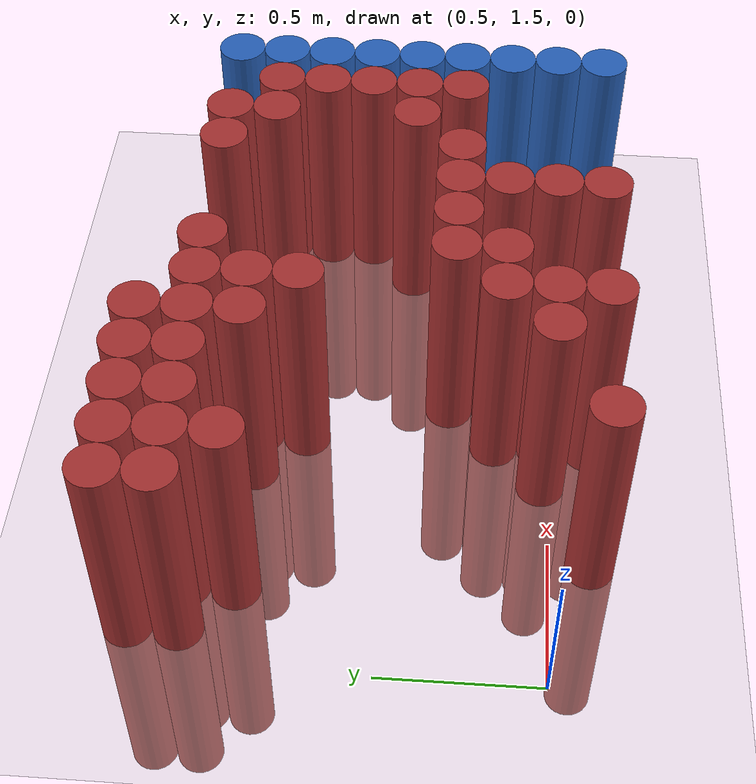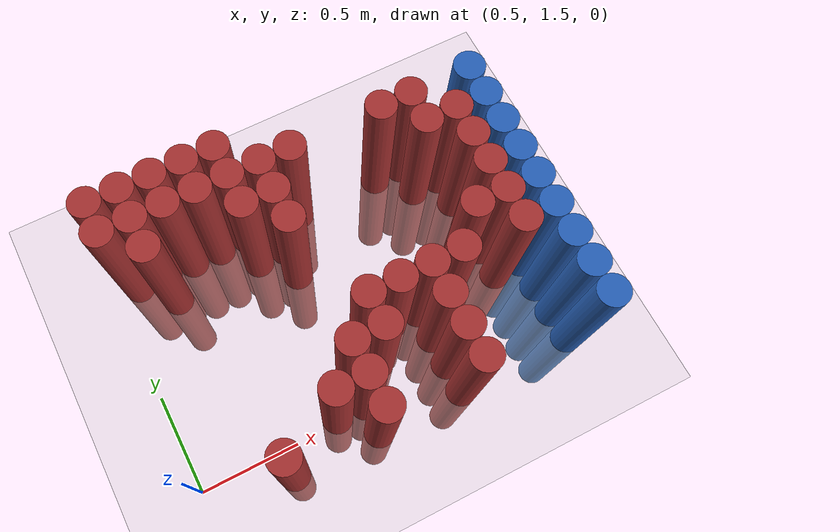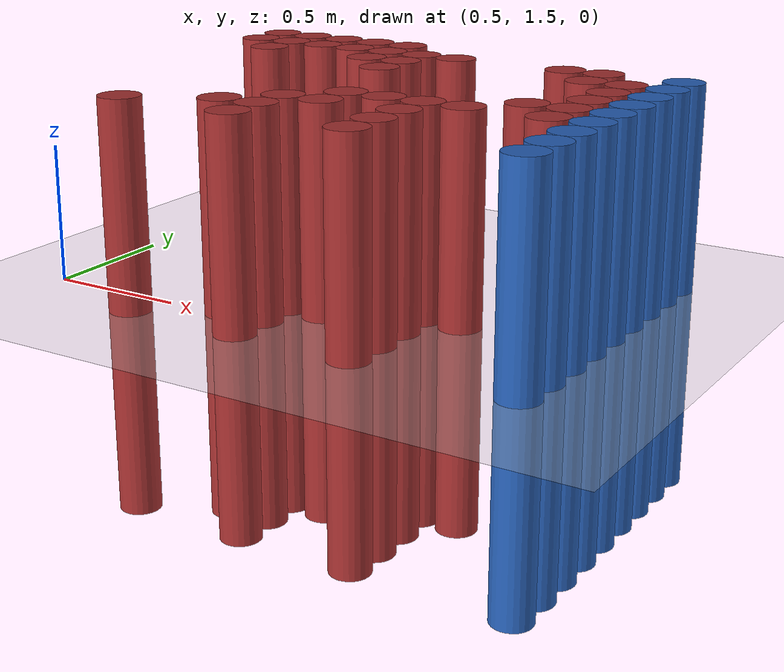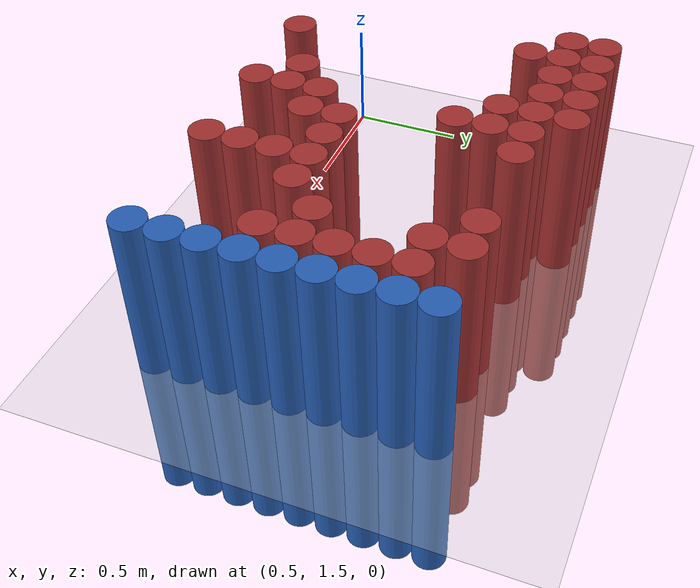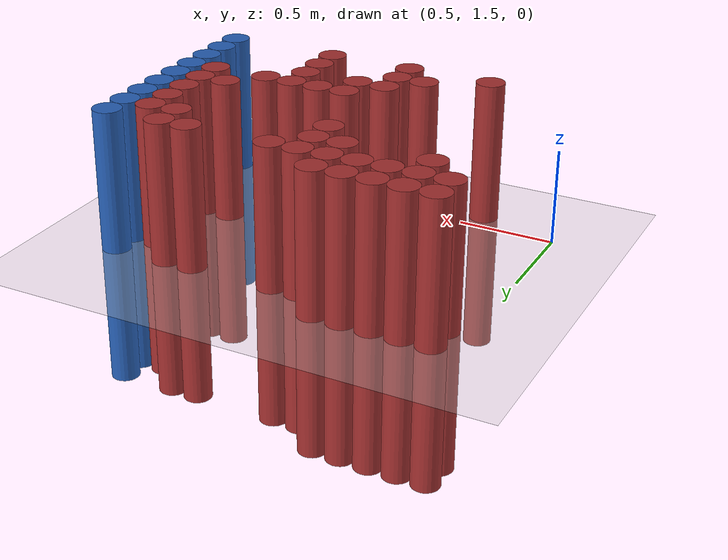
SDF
<sdf version="1.6">
 <world name="default">
  <model name="ground_plane">
   <static>1</static>
   <link name="link">
    <collision name="collision">
     <geometry><plane><normal>0 0 1</normal><size>100 100</size></plane></geometry>
     <surface><friction><ode><mu>100</mu><mu2>50</mu2></ode></friction></surface>
    </collision>
    <visual name="visual">
     <cast_shadows>0</cast_shadows>
     <geometry><plane><normal>0 0 1</normal><size>100 100</size></plane></geometry>
     <material>
      <script><uri>file://media/materials/scripts/gazebo.material</uri><name>Gazebo/Grey</name></script>
     </material>
    </visual>
   </link>
  </model>
  <model name="unit_cylinder_167">
   <static>1</static>
   <pose>0.625000 2.575000 0.000000 0.000000 0.000000 0.000000</pose>
   <link name="link">
    <inertial>
     <mass>1</mass>
     <inertia><ixx>0.145833</ixx><ixy>0</ixy><ixz>0</ixz><iyy>0.145833</iyy><iyz>0</iyz><izz>0.125</izz></inertia>
    </inertial>
    <collision name="collision">
     <geometry><cylinder><radius>0.075000</radius><length>1.5</length></cylinder></geometry>
    </collision>
    <visual name="visual">
     <geometry><cylinder><radius>0.075000</radius><length>1.5</length></cylinder></geometry>
     <material>
      <ambient>0.648000 0.192000 0.192000 1</ambient>
      <diffuse>0.648000 0.192000 0.192000 1</diffuse>
     </material>
     <material>
      <script><name>Gazebo/Grey</name><uri>file://media/materials/scripts/gazebo.material</uri></script>
     </material>
    </visual>
   </link>
  </model>
  <model name="unit_cylinder_168">
   <static>1</static>
   <pose>0.625000 2.725000 0.000000 0.000000 0.000000 0.000000</pose>
   <link name="link">
    <inertial>
     <mass>1</mass>
     <inertia><ixx>0.145833</ixx><ixy>0</ixy><ixz>0</ixz><iyy>0.145833</iyy><iyz>0</iyz><izz>0.125</izz></inertia>
    </inertial>
    <collision name="collision">
     <geometry><cylinder><radius>0.075000</radius><length>1.5</length></cylinder></geometry>
    </collision>
    <visual name="visual">
     <geometry><cylinder><radius>0.075000</radius><length>1.5</length></cylinder></geometry>
     <material>
      <ambient>0.648000 0.192000 0.192000 1</ambient>
      <diffuse>0.648000 0.192000 0.192000 1</diffuse>
     </material>
     <material>
      <script><name>Gazebo/Grey</name><uri>file://media/materials/scripts/gazebo.material</uri></script>
     </material>
    </visual>
   </link>
  </model>
  <model name="unit_cylinder_173">
   <static>1</static>
   <pose>0.775000 2.425000 0.000000 0.000000 0.000000 0.000000</pose>
   <link name="link">
    <inertial>
     <mass>1</mass>
     <inertia><ixx>0.145833</ixx><ixy>0</ixy><ixz>0</ixz><iyy>0.145833</iyy><iyz>0</iyz><izz>0.125</izz></inertia>
    </inertial>
    <collision name="collision">
     <geometry><cylinder><radius>0.075000</radius><length>1.5</length></cylinder></geometry>
    </collision>
    <visual name="visual">
     <geometry><cylinder><radius>0.075000</radius><length>1.5</length></cylinder></geometry>
     <material>
      <ambient>0.648000 0.192000 0.192000 1</ambient>
      <diffuse>0.648000 0.192000 0.192000 1</diffuse>
     </material>
     <material>
      <script><name>Gazebo/Grey</name><uri>file://media/materials/scripts/gazebo.material</uri></script>
     </material>
    </visual>
   </link>
  </model>
  <model name="unit_cylinder_174">
   <static>1</static>
   <pose>0.775000 2.575000 0.000000 0.000000 0.000000 0.000000</pose>
   <link name="link">
    <inertial>
     <mass>1</mass>
     <inertia><ixx>0.145833</ixx><ixy>0</ixy><ixz>0</ixz><iyy>0.145833</iyy><iyz>0</iyz><izz>0.125</izz></inertia>
    </inertial>
    <collision name="collision">
     <geometry><cylinder><radius>0.075000</radius><length>1.5</length></cylinder></geometry>
    </collision>
    <visual name="visual">
     <geometry><cylinder><radius>0.075000</radius><length>1.5</length></cylinder></geometry>
     <material>
      <ambient>0.648000 0.192000 0.192000 1</ambient>
      <diffuse>0.648000 0.192000 0.192000 1</diffuse>
     </material>
     <material>
      <script><name>Gazebo/Grey</name><uri>file://media/materials/scripts/gazebo.material</uri></script>
     </material>
    </visual>
   </link>
  </model>
  <model name="unit_cylinder_175">
   <static>1</static>
   <pose>0.775000 2.725000 0.000000 0.000000 0.000000 0.000000</pose>
   <link name="link">
    <inertial>
     <mass>1</mass>
     <inertia><ixx>0.145833</ixx><ixy>0</ixy><ixz>0</ixz><iyy>0.145833</iyy><iyz>0</iyz><izz>0.125</izz></inertia>
    </inertial>
    <collision name="collision">
     <geometry><cylinder><radius>0.075000</radius><length>1.5</length></cylinder></geometry>
    </collision>
    <visual name="visual">
     <geometry><cylinder><radius>0.075000</radius><length>1.5</length></cylinder></geometry>
     <material>
      <ambient>0.648000 0.192000 0.192000 1</ambient>
      <diffuse>0.648000 0.192000 0.192000 1</diffuse>
     </material>
     <material>
      <script><name>Gazebo/Grey</name><uri>file://media/materials/scripts/gazebo.material</uri></script>
     </material>
    </visual>
   </link>
  </model>
  <model name="unit_cylinder_179">
   <static>1</static>
   <pose>0.925000 1.375000 0.000000 0.000000 0.000000 0.000000</pose>
   <link name="link">
    <inertial>
     <mass>1</mass>
     <inertia><ixx>0.145833</ixx><ixy>0</ixy><ixz>0</ixz><iyy>0.145833</iyy><iyz>0</iyz><izz>0.125</izz></inertia>
    </inertial>
    <collision name="collision">
     <geometry><cylinder><radius>0.075000</radius><length>1.5</length></cylinder></geometry>
    </collision>
    <visual name="visual">
     <geometry><cylinder><radius>0.075000</radius><length>1.5</length></cylinder></geometry>
     <material>
      <ambient>0.648000 0.192000 0.192000 1</ambient>
      <diffuse>0.648000 0.192000 0.192000 1</diffuse>
     </material>
     <material>
      <script><name>Gazebo/Grey</name><uri>file://media/materials/scripts/gazebo.material</uri></script>
     </material>
    </visual>
   </link>
  </model>
  <model name="unit_cylinder_180">
   <static>1</static>
   <pose>0.925000 2.575000 0.000000 0.000000 0.000000 0.000000</pose>
   <link name="link">
    <inertial>
     <mass>1</mass>
     <inertia><ixx>0.145833</ixx><ixy>0</ixy><ixz>0</ixz><iyy>0.145833</iyy><iyz>0</iyz><izz>0.125</izz></inertia>
    </inertial>
    <collision name="collision">
     <geometry><cylinder><radius>0.075000</radius><length>1.5</length></cylinder></geometry>
    </collision>
    <visual name="visual">
     <geometry><cylinder><radius>0.075000</radius><length>1.5</length></cylinder></geometry>
     <material>
      <ambient>0.648000 0.192000 0.192000 1</ambient>
      <diffuse>0.648000 0.192000 0.192000 1</diffuse>
     </material>
     <material>
      <script><name>Gazebo/Grey</name><uri>file://media/materials/scripts/gazebo.material</uri></script>
     </material>
    </visual>
   </link>
  </model>
  <model name="unit_cylinder_181">
   <static>1</static>
   <pose>0.925000 2.725000 0.000000 0.000000 0.000000 0.000000</pose>
   <link name="link">
    <inertial>
     <mass>1</mass>
     <inertia><ixx>0.145833</ixx><ixy>0</ixy><ixz>0</ixz><iyy>0.145833</iyy><iyz>0</iyz><izz>0.125</izz></inertia>
    </inertial>
    <collision name="collision">
     <geometry><cylinder><radius>0.075000</radius><length>1.5</length></cylinder></geometry>
    </collision>
    <visual name="visual">
     <geometry><cylinder><radius>0.075000</radius><length>1.5</length></cylinder></geometry>
     <material>
      <ambient>0.648000 0.192000 0.192000 1</ambient>
      <diffuse>0.648000 0.192000 0.192000 1</diffuse>
     </material>
     <material>
      <script><name>Gazebo/Grey</name><uri>file://media/materials/scripts/gazebo.material</uri></script>
     </material>
    </visual>
   </link>
  </model>
  <model name="unit_cylinder_182">
   <static>1</static>
   <pose>1.075000 2.575000 0.000000 0.000000 0.000000 0.000000</pose>
   <link name="link">
    <inertial>
     <mass>1</mass>
     <inertia><ixx>0.145833</ixx><ixy>0</ixy><ixz>0</ixz><iyy>0.145833</iyy><iyz>0</iyz><izz>0.125</izz></inertia>
    </inertial>
    <collision name="collision">
     <geometry><cylinder><radius>0.075000</radius><length>1.5</length></cylinder></geometry>
    </collision>
    <visual name="visual">
     <geometry><cylinder><radius>0.075000</radius><length>1.5</length></cylinder></geometry>
     <material>
      <ambient>0.648000 0.192000 0.192000 1</ambient>
      <diffuse>0.648000 0.192000 0.192000 1</diffuse>
     </material>
     <material>
      <script><name>Gazebo/Grey</name><uri>file://media/materials/scripts/gazebo.material</uri></script>
     </material>
    </visual>
   </link>
  </model>
  <model name="unit_cylinder_183">
   <static>1</static>
   <pose>1.075000 2.725000 0.000000 0.000000 0.000000 0.000000</pose>
   <link name="link">
    <inertial>
     <mass>1</mass>
     <inertia><ixx>0.145833</ixx><ixy>0</ixy><ixz>0</ixz><iyy>0.145833</iyy><iyz>0</iyz><izz>0.125</izz></inertia>
    </inertial>
    <collision name="collision">
     <geometry><cylinder><radius>0.075000</radius><length>1.5</length></cylinder></geometry>
    </collision>
    <visual name="visual">
     <geometry><cylinder><radius>0.075000</radius><length>1.5</length></cylinder></geometry>
     <material>
      <ambient>0.648000 0.192000 0.192000 1</ambient>
      <diffuse>0.648000 0.192000 0.192000 1</diffuse>
     </material>
     <material>
      <script><name>Gazebo/Grey</name><uri>file://media/materials/scripts/gazebo.material</uri></script>
     </material>
    </visual>
   </link>
  </model>
  <model name="unit_cylinder_184">
   <static>1</static>
   <pose>1.225000 1.525000 0.000000 0.000000 0.000000 0.000000</pose>
   <link name="link">
    <inertial>
     <mass>1</mass>
     <inertia><ixx>0.145833</ixx><ixy>0</ixy><ixz>0</ixz><iyy>0.145833</iyy><iyz>0</iyz><izz>0.125</izz></inertia>
    </inertial>
    <collision name="collision">
     <geometry><cylinder><radius>0.075000</radius><length>1.5</length></cylinder></geometry>
    </collision>
    <visual name="visual">
     <geometry><cylinder><radius>0.075000</radius><length>1.5</length></cylinder></geometry>
     <material>
      <ambient>0.648000 0.192000 0.192000 1</ambient>
      <diffuse>0.648000 0.192000 0.192000 1</diffuse>
     </material>
     <material>
      <script><name>Gazebo/Grey</name><uri>file://media/materials/scripts/gazebo.material</uri></script>
     </material>
    </visual>
   </link>
  </model>
  <model name="unit_cylinder_185">
   <static>1</static>
   <pose>1.225000 2.425000 0.000000 0.000000 0.000000 0.000000</pose>
   <link name="link">
    <inertial>
     <mass>1</mass>
     <inertia><ixx>0.145833</ixx><ixy>0</ixy><ixz>0</ixz><iyy>0.145833</iyy><iyz>0</iyz><izz>0.125</izz></inertia>
    </inertial>
    <collision name="collision">
     <geometry><cylinder><radius>0.075000</radius><length>1.5</length></cylinder></geometry>
    </collision>
    <visual name="visual">
     <geometry><cylinder><radius>0.075000</radius><length>1.5</length></cylinder></geometry>
     <material>
      <ambient>0.648000 0.192000 0.192000 1</ambient>
      <diffuse>0.648000 0.192000 0.192000 1</diffuse>
     </material>
     <material>
      <script><name>Gazebo/Grey</name><uri>file://media/materials/scripts/gazebo.material</uri></script>
     </material>
    </visual>
   </link>
  </model>
  <model name="unit_cylinder_186">
   <static>1</static>
   <pose>1.225000 2.575000 0.000000 0.000000 0.000000 0.000000</pose>
   <link name="link">
    <inertial>
     <mass>1</mass>
     <inertia><ixx>0.145833</ixx><ixy>0</ixy><ixz>0</ixz><iyy>0.145833</iyy><iyz>0</iyz><izz>0.125</izz></inertia>
    </inertial>
    <collision name="collision">
     <geometry><cylinder><radius>0.075000</radius><length>1.5</length></cylinder></geometry>
    </collision>
    <visual name="visual">
     <geometry><cylinder><radius>0.075000</radius><length>1.5</length></cylinder></geometry>
     <material>
      <ambient>0.648000 0.192000 0.192000 1</ambient>
      <diffuse>0.648000 0.192000 0.192000 1</diffuse>
     </material>
     <material>
      <script><name>Gazebo/Grey</name><uri>file://media/materials/scripts/gazebo.material</uri></script>
     </material>
    </visual>
   </link>
  </model>
  <model name="unit_cylinder_187">
   <static>1</static>
   <pose>1.225000 2.725000 0.000000 0.000000 0.000000 0.000000</pose>
   <link name="link">
    <inertial>
     <mass>1</mass>
     <inertia><ixx>0.145833</ixx><ixy>0</ixy><ixz>0</ixz><iyy>0.145833</iyy><iyz>0</iyz><izz>0.125</izz></inertia>
    </inertial>
    <collision name="collision">
     <geometry><cylinder><radius>0.075000</radius><length>1.5</length></cylinder></geometry>
    </collision>
    <visual name="visual">
     <geometry><cylinder><radius>0.075000</radius><length>1.5</length></cylinder></geometry>
     <material>
      <ambient>0.648000 0.192000 0.192000 1</ambient>
      <diffuse>0.648000 0.192000 0.192000 1</diffuse>
     </material>
     <material>
      <script><name>Gazebo/Grey</name><uri>file://media/materials/scripts/gazebo.material</uri></script>
     </material>
    </visual>
   </link>
  </model>
  <model name="unit_cylinder_190">
   <static>1</static>
   <pose>1.375000 1.375000 0.000000 0.000000 0.000000 0.000000</pose>
   <link name="link">
    <inertial>
     <mass>1</mass>
     <inertia><ixx>0.145833</ixx><ixy>0</ixy><ixz>0</ixz><iyy>0.145833</iyy><iyz>0</iyz><izz>0.125</izz></inertia>
    </inertial>
    <collision name="collision">
     <geometry><cylinder><radius>0.075000</radius><length>1.5</length></cylinder></geometry>
    </collision>
    <visual name="visual">
     <geometry><cylinder><radius>0.075000</radius><length>1.5</length></cylinder></geometry>
     <material>
      <ambient>0.648000 0.192000 0.192000 1</ambient>
      <diffuse>0.648000 0.192000 0.192000 1</diffuse>
     </material>
     <material>
      <script><name>Gazebo/Grey</name><uri>file://media/materials/scripts/gazebo.material</uri></script>
     </material>
    </visual>
   </link>
  </model>
  <model name="unit_cylinder_191">
   <static>1</static>
   <pose>1.375000 1.525000 0.000000 0.000000 0.000000 0.000000</pose>
   <link name="link">
    <inertial>
     <mass>1</mass>
     <inertia><ixx>0.145833</ixx><ixy>0</ixy><ixz>0</ixz><iyy>0.145833</iyy><iyz>0</iyz><izz>0.125</izz></inertia>
    </inertial>
    <collision name="collision">
     <geometry><cylinder><radius>0.075000</radius><length>1.5</length></cylinder></geometry>
    </collision>
    <visual name="visual">
     <geometry><cylinder><radius>0.075000</radius><length>1.5</length></cylinder></geometry>
     <material>
      <ambient>0.648000 0.192000 0.192000 1</ambient>
      <diffuse>0.648000 0.192000 0.192000 1</diffuse>
     </material>
     <material>
      <script><name>Gazebo/Grey</name><uri>file://media/materials/scripts/gazebo.material</uri></script>
     </material>
    </visual>
   </link>
  </model>
  <model name="unit_cylinder_192">
   <static>1</static>
   <pose>1.375000 1.675000 0.000000 0.000000 0.000000 0.000000</pose>
   <link name="link">
    <inertial>
     <mass>1</mass>
     <inertia><ixx>0.145833</ixx><ixy>0</ixy><ixz>0</ixz><iyy>0.145833</iyy><iyz>0</iyz><izz>0.125</izz></inertia>
    </inertial>
    <collision name="collision">
     <geometry><cylinder><radius>0.075000</radius><length>1.5</length></cylinder></geometry>
    </collision>
    <visual name="visual">
     <geometry><cylinder><radius>0.075000</radius><length>1.5</length></cylinder></geometry>
     <material>
      <ambient>0.648000 0.192000 0.192000 1</ambient>
      <diffuse>0.648000 0.192000 0.192000 1</diffuse>
     </material>
     <material>
      <script><name>Gazebo/Grey</name><uri>file://media/materials/scripts/gazebo.material</uri></script>
     </material>
    </visual>
   </link>
  </model>
  <model name="unit_cylinder_193">
   <static>1</static>
   <pose>1.375000 2.275000 0.000000 0.000000 0.000000 0.000000</pose>
   <link name="link">
    <inertial>
     <mass>1</mass>
     <inertia><ixx>0.145833</ixx><ixy>0</ixy><ixz>0</ixz><iyy>0.145833</iyy><iyz>0</iyz><izz>0.125</izz></inertia>
    </inertial>
    <collision name="collision">
     <geometry><cylinder><radius>0.075000</radius><length>1.5</length></cylinder></geometry>
    </collision>
    <visual name="visual">
     <geometry><cylinder><radius>0.075000</radius><length>1.5</length></cylinder></geometry>
     <material>
      <ambient>0.648000 0.192000 0.192000 1</ambient>
      <diffuse>0.648000 0.192000 0.192000 1</diffuse>
     </material>
     <material>
      <script><name>Gazebo/Grey</name><uri>file://media/materials/scripts/gazebo.material</uri></script>
     </material>
    </visual>
   </link>
  </model>
  <model name="unit_cylinder_194">
   <static>1</static>
   <pose>1.375000 2.425000 0.000000 0.000000 0.000000 0.000000</pose>
   <link name="link">
    <inertial>
     <mass>1</mass>
     <inertia><ixx>0.145833</ixx><ixy>0</ixy><ixz>0</ixz><iyy>0.145833</iyy><iyz>0</iyz><izz>0.125</izz></inertia>
    </inertial>
    <collision name="collision">
     <geometry><cylinder><radius>0.075000</radius><length>1.5</length></cylinder></geometry>
    </collision>
    <visual name="visual">
     <geometry><cylinder><radius>0.075000</radius><length>1.5</length></cylinder></geometry>
     <material>
      <ambient>0.648000 0.192000 0.192000 1</ambient>
      <diffuse>0.648000 0.192000 0.192000 1</diffuse>
     </material>
     <material>
      <script><name>Gazebo/Grey</name><uri>file://media/materials/scripts/gazebo.material</uri></script>
     </material>
    </visual>
   </link>
  </model>
  <model name="unit_cylinder_195">
   <static>1</static>
   <pose>1.375000 2.575000 0.000000 0.000000 0.000000 0.000000</pose>
   <link name="link">
    <inertial>
     <mass>1</mass>
     <inertia><ixx>0.145833</ixx><ixy>0</ixy><ixz>0</ixz><iyy>0.145833</iyy><iyz>0</iyz><izz>0.125</izz></inertia>
    </inertial>
    <collision name="collision">
     <geometry><cylinder><radius>0.075000</radius><length>1.5</length></cylinder></geometry>
    </collision>
    <visual name="visual">
     <geometry><cylinder><radius>0.075000</radius><length>1.5</length></cylinder></geometry>
     <material>
      <ambient>0.648000 0.192000 0.192000 1</ambient>
      <diffuse>0.648000 0.192000 0.192000 1</diffuse>
     </material>
     <material>
      <script><name>Gazebo/Grey</name><uri>file://media/materials/scripts/gazebo.material</uri></script>
     </material>
    </visual>
   </link>
  </model>
  <model name="unit_cylinder_201">
   <static>1</static>
   <pose>1.525000 1.675000 0.000000 0.000000 0.000000 0.000000</pose>
   <link name="link">
    <inertial>
     <mass>1</mass>
     <inertia><ixx>0.145833</ixx><ixy>0</ixy><ixz>0</ixz><iyy>0.145833</iyy><iyz>0</iyz><izz>0.125</izz></inertia>
    </inertial>
    <collision name="collision">
     <geometry><cylinder><radius>0.075000</radius><length>1.5</length></cylinder></geometry>
    </collision>
    <visual name="visual">
     <geometry><cylinder><radius>0.075000</radius><length>1.5</length></cylinder></geometry>
     <material>
      <ambient>0.648000 0.192000 0.192000 1</ambient>
      <diffuse>0.648000 0.192000 0.192000 1</diffuse>
     </material>
     <material>
      <script><name>Gazebo/Grey</name><uri>file://media/materials/scripts/gazebo.material</uri></script>
     </material>
    </visual>
   </link>
  </model>
  <model name="unit_cylinder_202">
   <static>1</static>
   <pose>1.525000 1.825000 0.000000 0.000000 0.000000 0.000000</pose>
   <link name="link">
    <inertial>
     <mass>1</mass>
     <inertia><ixx>0.145833</ixx><ixy>0</ixy><ixz>0</ixz><iyy>0.145833</iyy><iyz>0</iyz><izz>0.125</izz></inertia>
    </inertial>
    <collision name="collision">
     <geometry><cylinder><radius>0.075000</radius><length>1.5</length></cylinder></geometry>
    </collision>
    <visual name="visual">
     <geometry><cylinder><radius>0.075000</radius><length>1.5</length></cylinder></geometry>
     <material>
      <ambient>0.648000 0.192000 0.192000 1</ambient>
      <diffuse>0.648000 0.192000 0.192000 1</diffuse>
     </material>
     <material>
      <script><name>Gazebo/Grey</name><uri>file://media/materials/scripts/gazebo.material</uri></script>
     </material>
    </visual>
   </link>
  </model>
  <model name="unit_cylinder_203">
   <static>1</static>
   <pose>1.525000 2.575000 0.000000 0.000000 0.000000 0.000000</pose>
   <link name="link">
    <inertial>
     <mass>1</mass>
     <inertia><ixx>0.145833</ixx><ixy>0</ixy><ixz>0</ixz><iyy>0.145833</iyy><iyz>0</iyz><izz>0.125</izz></inertia>
    </inertial>
    <collision name="collision">
     <geometry><cylinder><radius>0.075000</radius><length>1.5</length></cylinder></geometry>
    </collision>
    <visual name="visual">
     <geometry><cylinder><radius>0.075000</radius><length>1.5</length></cylinder></geometry>
     <material>
      <ambient>0.648000 0.192000 0.192000 1</ambient>
      <diffuse>0.648000 0.192000 0.192000 1</diffuse>
     </material>
     <material>
      <script><name>Gazebo/Grey</name><uri>file://media/materials/scripts/gazebo.material</uri></script>
     </material>
    </visual>
   </link>
  </model>
  <model name="unit_cylinder_209">
   <static>1</static>
   <pose>1.675000 1.825000 0.000000 0.000000 0.000000 0.000000</pose>
   <link name="link">
    <inertial>
     <mass>1</mass>
     <inertia><ixx>0.145833</ixx><ixy>0</ixy><ixz>0</ixz><iyy>0.145833</iyy><iyz>0</iyz><izz>0.125</izz></inertia>
    </inertial>
    <collision name="collision">
     <geometry><cylinder><radius>0.075000</radius><length>1.5</length></cylinder></geometry>
    </collision>
    <visual name="visual">
     <geometry><cylinder><radius>0.075000</radius><length>1.5</length></cylinder></geometry>
     <material>
      <ambient>0.648000 0.192000 0.192000 1</ambient>
      <diffuse>0.648000 0.192000 0.192000 1</diffuse>
     </material>
     <material>
      <script><name>Gazebo/Grey</name><uri>file://media/materials/scripts/gazebo.material</uri></script>
     </material>
    </visual>
   </link>
  </model>
  <model name="unit_cylinder_215">
   <static>1</static>
   <pose>1.825000 1.375000 0.000000 0.000000 0.000000 0.000000</pose>
   <link name="link">
    <inertial>
     <mass>1</mass>
     <inertia><ixx>0.145833</ixx><ixy>0</ixy><ixz>0</ixz><iyy>0.145833</iyy><iyz>0</iyz><izz>0.125</izz></inertia>
    </inertial>
    <collision name="collision">
     <geometry><cylinder><radius>0.075000</radius><length>1.5</length></cylinder></geometry>
    </collision>
    <visual name="visual">
     <geometry><cylinder><radius>0.075000</radius><length>1.5</length></cylinder></geometry>
     <material>
      <ambient>0.648000 0.192000 0.192000 1</ambient>
      <diffuse>0.648000 0.192000 0.192000 1</diffuse>
     </material>
     <material>
      <script><name>Gazebo/Grey</name><uri>file://media/materials/scripts/gazebo.material</uri></script>
     </material>
    </visual>
   </link>
  </model>
  <model name="unit_cylinder_216">
   <static>1</static>
   <pose>1.825000 1.525000 0.000000 0.000000 0.000000 0.000000</pose>
   <link name="link">
    <inertial>
     <mass>1</mass>
     <inertia><ixx>0.145833</ixx><ixy>0</ixy><ixz>0</ixz><iyy>0.145833</iyy><iyz>0</iyz><izz>0.125</izz></inertia>
    </inertial>
    <collision name="collision">
     <geometry><cylinder><radius>0.075000</radius><length>1.5</length></cylinder></geometry>
    </collision>
    <visual name="visual">
     <geometry><cylinder><radius>0.075000</radius><length>1.5</length></cylinder></geometry>
     <material>
      <ambient>0.648000 0.192000 0.192000 1</ambient>
      <diffuse>0.648000 0.192000 0.192000 1</diffuse>
     </material>
     <material>
      <script><name>Gazebo/Grey</name><uri>file://media/materials/scripts/gazebo.material</uri></script>
     </material>
    </visual>
   </link>
  </model>
  <model name="unit_cylinder_217">
   <static>1</static>
   <pose>1.825000 1.675000 0.000000 0.000000 0.000000 0.000000</pose>
   <link name="link">
    <inertial>
     <mass>1</mass>
     <inertia><ixx>0.145833</ixx><ixy>0</ixy><ixz>0</ixz><iyy>0.145833</iyy><iyz>0</iyz><izz>0.125</izz></inertia>
    </inertial>
    <collision name="collision">
     <geometry><cylinder><radius>0.075000</radius><length>1.5</length></cylinder></geometry>
    </collision>
    <visual name="visual">
     <geometry><cylinder><radius>0.075000</radius><length>1.5</length></cylinder></geometry>
     <material>
      <ambient>0.648000 0.192000 0.192000 1</ambient>
      <diffuse>0.648000 0.192000 0.192000 1</diffuse>
     </material>
     <material>
      <script><name>Gazebo/Grey</name><uri>file://media/materials/scripts/gazebo.material</uri></script>
     </material>
    </visual>
   </link>
  </model>
  <model name="unit_cylinder_218">
   <static>1</static>
   <pose>1.825000 1.825000 0.000000 0.000000 0.000000 0.000000</pose>
   <link name="link">
    <inertial>
     <mass>1</mass>
     <inertia><ixx>0.145833</ixx><ixy>0</ixy><ixz>0</ixz><iyy>0.145833</iyy><iyz>0</iyz><izz>0.125</izz></inertia>
    </inertial>
    <collision name="collision">
     <geometry><cylinder><radius>0.075000</radius><length>1.5</length></cylinder></geometry>
    </collision>
    <visual name="visual">
     <geometry><cylinder><radius>0.075000</radius><length>1.5</length></cylinder></geometry>
     <material>
      <ambient>0.648000 0.192000 0.192000 1</ambient>
      <diffuse>0.648000 0.192000 0.192000 1</diffuse>
     </material>
     <material>
      <script><name>Gazebo/Grey</name><uri>file://media/materials/scripts/gazebo.material</uri></script>
     </material>
    </visual>
   </link>
  </model>
  <model name="unit_cylinder_226">
   <static>1</static>
   <pose>1.975000 1.825000 0.000000 0.000000 0.000000 0.000000</pose>
   <link name="link">
    <inertial>
     <mass>1</mass>
     <inertia><ixx>0.145833</ixx><ixy>0</ixy><ixz>0</ixz><iyy>0.145833</iyy><iyz>0</iyz><izz>0.125</izz></inertia>
    </inertial>
    <collision name="collision">
     <geometry><cylinder><radius>0.075000</radius><length>1.5</length></cylinder></geometry>
    </collision>
    <visual name="visual">
     <geometry><cylinder><radius>0.075000</radius><length>1.5</length></cylinder></geometry>
     <material>
      <ambient>0.648000 0.192000 0.192000 1</ambient>
      <diffuse>0.648000 0.192000 0.192000 1</diffuse>
     </material>
     <material>
      <script><name>Gazebo/Grey</name><uri>file://media/materials/scripts/gazebo.material</uri></script>
     </material>
    </visual>
   </link>
  </model>
  <model name="unit_cylinder_227">
   <static>1</static>
   <pose>1.975000 2.575000 0.000000 0.000000 0.000000 0.000000</pose>
   <link name="link">
    <inertial>
     <mass>1</mass>
     <inertia><ixx>0.145833</ixx><ixy>0</ixy><ixz>0</ixz><iyy>0.145833</iyy><iyz>0</iyz><izz>0.125</izz></inertia>
    </inertial>
    <collision name="collision">
     <geometry><cylinder><radius>0.075000</radius><length>1.5</length></cylinder></geometry>
    </collision>
    <visual name="visual">
     <geometry><cylinder><radius>0.075000</radius><length>1.5</length></cylinder></geometry>
     <material>
      <ambient>0.648000 0.192000 0.192000 1</ambient>
      <diffuse>0.648000 0.192000 0.192000 1</diffuse>
     </material>
     <material>
      <script><name>Gazebo/Grey</name><uri>file://media/materials/scripts/gazebo.material</uri></script>
     </material>
    </visual>
   </link>
  </model>
  <model name="unit_cylinder_234">
   <static>1</static>
   <pose>2.125000 1.975000 0.000000 0.000000 0.000000 0.000000</pose>
   <link name="link">
    <inertial>
     <mass>1</mass>
     <inertia><ixx>0.145833</ixx><ixy>0</ixy><ixz>0</ixz><iyy>0.145833</iyy><iyz>0</iyz><izz>0.125</izz></inertia>
    </inertial>
    <collision name="collision">
     <geometry><cylinder><radius>0.075000</radius><length>1.5</length></cylinder></geometry>
    </collision>
    <visual name="visual">
     <geometry><cylinder><radius>0.075000</radius><length>1.5</length></cylinder></geometry>
     <material>
      <ambient>0.648000 0.192000 0.192000 1</ambient>
      <diffuse>0.648000 0.192000 0.192000 1</diffuse>
     </material>
     <material>
      <script><name>Gazebo/Grey</name><uri>file://media/materials/scripts/gazebo.material</uri></script>
     </material>
    </visual>
   </link>
  </model>
  <model name="unit_cylinder_235">
   <static>1</static>
   <pose>2.125000 2.425000 0.000000 0.000000 0.000000 0.000000</pose>
   <link name="link">
    <inertial>
     <mass>1</mass>
     <inertia><ixx>0.145833</ixx><ixy>0</ixy><ixz>0</ixz><iyy>0.145833</iyy><iyz>0</iyz><izz>0.125</izz></inertia>
    </inertial>
    <collision name="collision">
     <geometry><cylinder><radius>0.075000</radius><length>1.5</length></cylinder></geometry>
    </collision>
    <visual name="visual">
     <geometry><cylinder><radius>0.075000</radius><length>1.5</length></cylinder></geometry>
     <material>
      <ambient>0.648000 0.192000 0.192000 1</ambient>
      <diffuse>0.648000 0.192000 0.192000 1</diffuse>
     </material>
     <material>
      <script><name>Gazebo/Grey</name><uri>file://media/materials/scripts/gazebo.material</uri></script>
     </material>
    </visual>
   </link>
  </model>
  <model name="unit_cylinder_236">
   <static>1</static>
   <pose>2.125000 2.575000 0.000000 0.000000 0.000000 0.000000</pose>
   <link name="link">
    <inertial>
     <mass>1</mass>
     <inertia><ixx>0.145833</ixx><ixy>0</ixy><ixz>0</ixz><iyy>0.145833</iyy><iyz>0</iyz><izz>0.125</izz></inertia>
    </inertial>
    <collision name="collision">
     <geometry><cylinder><radius>0.075000</radius><length>1.5</length></cylinder></geometry>
    </collision>
    <visual name="visual">
     <geometry><cylinder><radius>0.075000</radius><length>1.5</length></cylinder></geometry>
     <material>
      <ambient>0.648000 0.192000 0.192000 1</ambient>
      <diffuse>0.648000 0.192000 0.192000 1</diffuse>
     </material>
     <material>
      <script><name>Gazebo/Grey</name><uri>file://media/materials/scripts/gazebo.material</uri></script>
     </material>
    </visual>
   </link>
  </model>
  <model name="unit_cylinder_243">
   <static>1</static>
   <pose>2.275000 1.825000 0.000000 0.000000 0.000000 0.000000</pose>
   <link name="link">
    <inertial>
     <mass>1</mass>
     <inertia><ixx>0.145833</ixx><ixy>0</ixy><ixz>0</ixz><iyy>0.145833</iyy><iyz>0</iyz><izz>0.125</izz></inertia>
    </inertial>
    <collision name="collision">
     <geometry><cylinder><radius>0.075000</radius><length>1.5</length></cylinder></geometry>
    </collision>
    <visual name="visual">
     <geometry><cylinder><radius>0.075000</radius><length>1.5</length></cylinder></geometry>
     <material>
      <ambient>0.648000 0.192000 0.192000 1</ambient>
      <diffuse>0.648000 0.192000 0.192000 1</diffuse>
     </material>
     <material>
      <script><name>Gazebo/Grey</name><uri>file://media/materials/scripts/gazebo.material</uri></script>
     </material>
    </visual>
   </link>
  </model>
  <model name="unit_cylinder_244">
   <static>1</static>
   <pose>2.275000 1.975000 0.000000 0.000000 0.000000 0.000000</pose>
   <link name="link">
    <inertial>
     <mass>1</mass>
     <inertia><ixx>0.145833</ixx><ixy>0</ixy><ixz>0</ixz><iyy>0.145833</iyy><iyz>0</iyz><izz>0.125</izz></inertia>
    </inertial>
    <collision name="collision">
     <geometry><cylinder><radius>0.075000</radius><length>1.5</length></cylinder></geometry>
    </collision>
    <visual name="visual">
     <geometry><cylinder><radius>0.075000</radius><length>1.5</length></cylinder></geometry>
     <material>
      <ambient>0.648000 0.192000 0.192000 1</ambient>
      <diffuse>0.648000 0.192000 0.192000 1</diffuse>
     </material>
     <material>
      <script><name>Gazebo/Grey</name><uri>file://media/materials/scripts/gazebo.material</uri></script>
     </material>
    </visual>
   </link>
  </model>
  <model name="unit_cylinder_245">
   <static>1</static>
   <pose>2.275000 2.125000 0.000000 0.000000 0.000000 0.000000</pose>
   <link name="link">
    <inertial>
     <mass>1</mass>
     <inertia><ixx>0.145833</ixx><ixy>0</ixy><ixz>0</ixz><iyy>0.145833</iyy><iyz>0</iyz><izz>0.125</izz></inertia>
    </inertial>
    <collision name="collision">
     <geometry><cylinder><radius>0.075000</radius><length>1.5</length></cylinder></geometry>
    </collision>
    <visual name="visual">
     <geometry><cylinder><radius>0.075000</radius><length>1.5</length></cylinder></geometry>
     <material>
      <ambient>0.648000 0.192000 0.192000 1</ambient>
      <diffuse>0.648000 0.192000 0.192000 1</diffuse>
     </material>
     <material>
      <script><name>Gazebo/Grey</name><uri>file://media/materials/scripts/gazebo.material</uri></script>
     </material>
    </visual>
   </link>
  </model>
  <model name="unit_cylinder_246">
   <static>1</static>
   <pose>2.275000 2.275000 0.000000 0.000000 0.000000 0.000000</pose>
   <link name="link">
    <inertial>
     <mass>1</mass>
     <inertia><ixx>0.145833</ixx><ixy>0</ixy><ixz>0</ixz><iyy>0.145833</iyy><iyz>0</iyz><izz>0.125</izz></inertia>
    </inertial>
    <collision name="collision">
     <geometry><cylinder><radius>0.075000</radius><length>1.5</length></cylinder></geometry>
    </collision>
    <visual name="visual">
     <geometry><cylinder><radius>0.075000</radius><length>1.5</length></cylinder></geometry>
     <material>
      <ambient>0.648000 0.192000 0.192000 1</ambient>
      <diffuse>0.648000 0.192000 0.192000 1</diffuse>
     </material>
     <material>
      <script><name>Gazebo/Grey</name><uri>file://media/materials/scripts/gazebo.material</uri></script>
     </material>
    </visual>
   </link>
  </model>
  <model name="unit_cylinder_247">
   <static>1</static>
   <pose>2.275000 2.425000 0.000000 0.000000 0.000000 0.000000</pose>
   <link name="link">
    <inertial>
     <mass>1</mass>
     <inertia><ixx>0.145833</ixx><ixy>0</ixy><ixz>0</ixz><iyy>0.145833</iyy><iyz>0</iyz><izz>0.125</izz></inertia>
    </inertial>
    <collision name="collision">
     <geometry><cylinder><radius>0.075000</radius><length>1.5</length></cylinder></geometry>
    </collision>
    <visual name="visual">
     <geometry><cylinder><radius>0.075000</radius><length>1.5</length></cylinder></geometry>
     <material>
      <ambient>0.648000 0.192000 0.192000 1</ambient>
      <diffuse>0.648000 0.192000 0.192000 1</diffuse>
     </material>
     <material>
      <script><name>Gazebo/Grey</name><uri>file://media/materials/scripts/gazebo.material</uri></script>
     </material>
    </visual>
   </link>
  </model>
  <model name="unit_cylinder_261">
   <static>1</static>
   <pose>2.425000 1.375000 0.000000 0.000000 0.000000 0.000000</pose>
   <link name="link">
    <inertial>
     <mass>1</mass>
     <inertia><ixx>0.145833</ixx><ixy>0</ixy><ixz>0</ixz><iyy>0.145833</iyy><iyz>0</iyz><izz>0.125</izz></inertia>
    </inertial>
    <collision name="collision">
     <geometry><cylinder><radius>0.075000</radius><length>1.5</length></cylinder></geometry>
    </collision>
    <visual name="visual">
     <geometry><cylinder><radius>0.075000</radius><length>1.5</length></cylinder></geometry>
     <material>
      <ambient>0.152000 0.379000 0.720000 1</ambient>
      <diffuse>0.152000 0.379000 0.720000 1</diffuse>
     </material>
     <material>
      <script><name>Gazebo/Grey</name><uri>file://media/materials/scripts/gazebo.material</uri></script>
     </material>
    </visual>
   </link>
  </model>
  <model name="unit_cylinder_262">
   <static>1</static>
   <pose>2.425000 1.525000 0.000000 0.000000 0.000000 0.000000</pose>
   <link name="link">
    <inertial>
     <mass>1</mass>
     <inertia><ixx>0.145833</ixx><ixy>0</ixy><ixz>0</ixz><iyy>0.145833</iyy><iyz>0</iyz><izz>0.125</izz></inertia>
    </inertial>
    <collision name="collision">
     <geometry><cylinder><radius>0.075000</radius><length>1.5</length></cylinder></geometry>
    </collision>
    <visual name="visual">
     <geometry><cylinder><radius>0.075000</radius><length>1.5</length></cylinder></geometry>
     <material>
      <ambient>0.152000 0.379000 0.720000 1</ambient>
      <diffuse>0.152000 0.379000 0.720000 1</diffuse>
     </material>
     <material>
      <script><name>Gazebo/Grey</name><uri>file://media/materials/scripts/gazebo.material</uri></script>
     </material>
    </visual>
   </link>
  </model>
  <model name="unit_cylinder_263">
   <static>1</static>
   <pose>2.425000 1.675000 0.000000 0.000000 0.000000 0.000000</pose>
   <link name="link">
    <inertial>
     <mass>1</mass>
     <inertia><ixx>0.145833</ixx><ixy>0</ixy><ixz>0</ixz><iyy>0.145833</iyy><iyz>0</iyz><izz>0.125</izz></inertia>
    </inertial>
    <collision name="collision">
     <geometry><cylinder><radius>0.075000</radius><length>1.5</length></cylinder></geometry>
    </collision>
    <visual name="visual">
     <geometry><cylinder><radius>0.075000</radius><length>1.5</length></cylinder></geometry>
     <material>
      <ambient>0.152000 0.379000 0.720000 1</ambient>
      <diffuse>0.152000 0.379000 0.720000 1</diffuse>
     </material>
     <material>
      <script><name>Gazebo/Grey</name><uri>file://media/materials/scripts/gazebo.material</uri></script>
     </material>
    </visual>
   </link>
  </model>
  <model name="unit_cylinder_264">
   <static>1</static>
   <pose>2.425000 1.825000 0.000000 0.000000 0.000000 0.000000</pose>
   <link name="link">
    <inertial>
     <mass>1</mass>
     <inertia><ixx>0.145833</ixx><ixy>0</ixy><ixz>0</ixz><iyy>0.145833</iyy><iyz>0</iyz><izz>0.125</izz></inertia>
    </inertial>
    <collision name="collision">
     <geometry><cylinder><radius>0.075000</radius><length>1.5</length></cylinder></geometry>
    </collision>
    <visual name="visual">
     <geometry><cylinder><radius>0.075000</radius><length>1.5</length></cylinder></geometry>
     <material>
      <ambient>0.152000 0.379000 0.720000 1</ambient>
      <diffuse>0.152000 0.379000 0.720000 1</diffuse>
     </material>
     <material>
      <script><name>Gazebo/Grey</name><uri>file://media/materials/scripts/gazebo.material</uri></script>
     </material>
    </visual>
   </link>
  </model>
  <model name="unit_cylinder_265">
   <static>1</static>
   <pose>2.425000 1.975000 0.000000 0.000000 0.000000 0.000000</pose>
   <link name="link">
    <inertial>
     <mass>1</mass>
     <inertia><ixx>0.145833</ixx><ixy>0</ixy><ixz>0</ixz><iyy>0.145833</iyy><iyz>0</iyz><izz>0.125</izz></inertia>
    </inertial>
    <collision name="collision">
     <geometry><cylinder><radius>0.075000</radius><length>1.5</length></cylinder></geometry>
    </collision>
    <visual name="visual">
     <geometry><cylinder><radius>0.075000</radius><length>1.5</length></cylinder></geometry>
     <material>
      <ambient>0.152000 0.379000 0.720000 1</ambient>
      <diffuse>0.152000 0.379000 0.720000 1</diffuse>
     </material>
     <material>
      <script><name>Gazebo/Grey</name><uri>file://media/materials/scripts/gazebo.material</uri></script>
     </material>
    </visual>
   </link>
  </model>
  <model name="unit_cylinder_266">
   <static>1</static>
   <pose>2.425000 2.125000 0.000000 0.000000 0.000000 0.000000</pose>
   <link name="link">
    <inertial>
     <mass>1</mass>
     <inertia><ixx>0.145833</ixx><ixy>0</ixy><ixz>0</ixz><iyy>0.145833</iyy><iyz>0</iyz><izz>0.125</izz></inertia>
    </inertial>
    <collision name="collision">
     <geometry><cylinder><radius>0.075000</radius><length>1.5</length></cylinder></geometry>
    </collision>
    <visual name="visual">
     <geometry><cylinder><radius>0.075000</radius><length>1.5</length></cylinder></geometry>
     <material>
      <ambient>0.152000 0.379000 0.720000 1</ambient>
      <diffuse>0.152000 0.379000 0.720000 1</diffuse>
     </material>
     <material>
      <script><name>Gazebo/Grey</name><uri>file://media/materials/scripts/gazebo.material</uri></script>
     </material>
    </visual>
   </link>
  </model>
  <model name="unit_cylinder_267">
   <static>1</static>
   <pose>2.425000 2.275000 0.000000 0.000000 0.000000 0.000000</pose>
   <link name="link">
    <inertial>
     <mass>1</mass>
     <inertia><ixx>0.145833</ixx><ixy>0</ixy><ixz>0</ixz><iyy>0.145833</iyy><iyz>0</iyz><izz>0.125</izz></inertia>
    </inertial>
    <collision name="collision">
     <geometry><cylinder><radius>0.075000</radius><length>1.5</length></cylinder></geometry>
    </collision>
    <visual name="visual">
     <geometry><cylinder><radius>0.075000</radius><length>1.5</length></cylinder></geometry>
     <material>
      <ambient>0.152000 0.379000 0.720000 1</ambient>
      <diffuse>0.152000 0.379000 0.720000 1</diffuse>
     </material>
     <material>
      <script><name>Gazebo/Grey</name><uri>file://media/materials/scripts/gazebo.material</uri></script>
     </material>
    </visual>
   </link>
  </model>
  <model name="unit_cylinder_268">
   <static>1</static>
   <pose>2.425000 2.425000 0.000000 0.000000 0.000000 0.000000</pose>
   <link name="link">
    <inertial>
     <mass>1</mass>
     <inertia><ixx>0.145833</ixx><ixy>0</ixy><ixz>0</ixz><iyy>0.145833</iyy><iyz>0</iyz><izz>0.125</izz></inertia>
    </inertial>
    <collision name="collision">
     <geometry><cylinder><radius>0.075000</radius><length>1.5</length></cylinder></geometry>
    </collision>
    <visual name="visual">
     <geometry><cylinder><radius>0.075000</radius><length>1.5</length></cylinder></geometry>
     <material>
      <ambient>0.152000 0.379000 0.720000 1</ambient>
      <diffuse>0.152000 0.379000 0.720000 1</diffuse>
     </material>
     <material>
      <script><name>Gazebo/Grey</name><uri>file://media/materials/scripts/gazebo.material</uri></script>
     </material>
    </visual>
   </link>
  </model>
  <model name="unit_cylinder_269">
   <static>1</static>
   <pose>2.425000 2.575000 0.000000 0.000000 0.000000 0.000000</pose>
   <link name="link">
    <inertial>
     <mass>1</mass>
     <inertia><ixx>0.145833</ixx><ixy>0</ixy><ixz>0</ixz><iyy>0.145833</iyy><iyz>0</iyz><izz>0.125</izz></inertia>
    </inertial>
    <collision name="collision">
     <geometry><cylinder><radius>0.075000</radius><length>1.5</length></cylinder></geometry>
    </collision>
    <visual name="visual">
     <geometry><cylinder><radius>0.075000</radius><length>1.5</length></cylinder></geometry>
     <material>
      <ambient>0.152000 0.379000 0.720000 1</ambient>
      <diffuse>0.152000 0.379000 0.720000 1</diffuse>
     </material>
     <material>
      <script><name>Gazebo/Grey</name><uri>file://media/materials/scripts/gazebo.material</uri></script>
     </material>
    </visual>
   </link>
  </model>
 </world>
</sdf>
